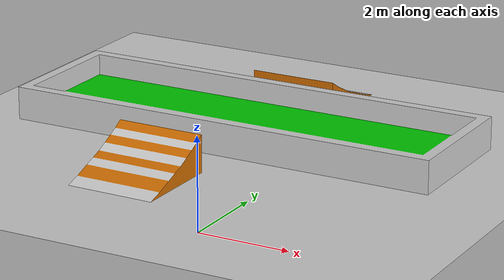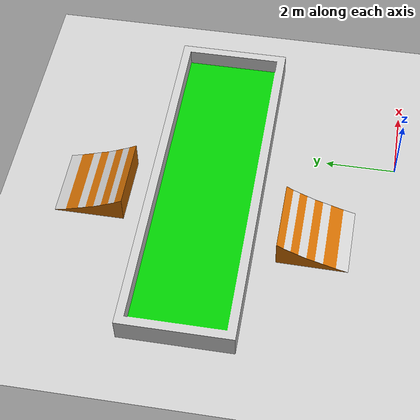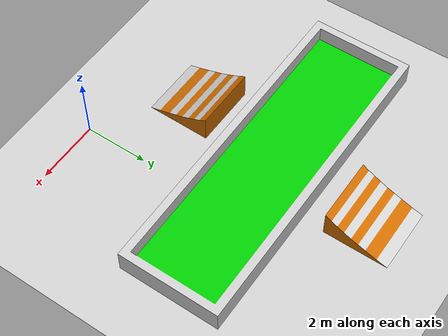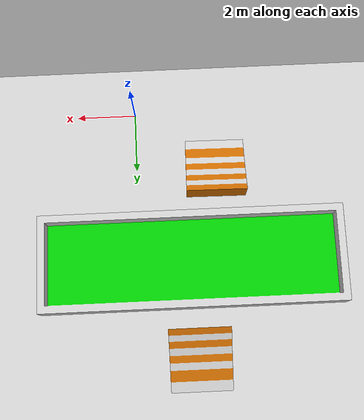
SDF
<sdf version="1.7">
 <world name="default">
  <light name="sun" type="directional">
   <pose>0 0 10 0 -0 0</pose>
   <diffuse>0.8 0.8 0.8 1</diffuse>
   <specular>0.2 0.2 0.2 1</specular>
   <attenuation>
    <range>1000</range>
    <constant>0.9</constant>
    <linear>0.01</linear>
    <quadratic>0.001</quadratic>
   </attenuation>
   <direction>-0.5 0.1 -0.9</direction>
   <spot><inner_angle>0</inner_angle><outer_angle>0</outer_angle><falloff>0</falloff></spot>
  </light>
  <model name="ground_plane">
   <static>1</static>
   <link name="link">
    <collision name="collision">
     <geometry><plane><normal>0 0 1</normal><size>100 100</size></plane></geometry>
     <surface><friction><ode><mu>100</mu><mu2>50</mu2></ode></friction></surface>
    </collision>
    <visual name="visual">
     <cast_shadows>0</cast_shadows>
     <geometry><plane><normal>0 0 1</normal><size>100 100</size></plane></geometry>
     <material>
      <script><uri>file://media/materials/scripts/gazebo.material</uri><name>Gazebo/Grey</name></script>
     </material>
    </visual>
   </link>
  </model>
  <gravity>0 0 -9.8</gravity>
  <magnetic_field>6e-06 2.3e-05 -4.2e-05</magnetic_field>
  <atmosphere type="adiabatic"/>
  <physics type="ode">
   <max_step_size>0.001</max_step_size>
   <real_time_factor>1</real_time_factor>
   <real_time_update_rate>1000</real_time_update_rate>
  </physics>
  <scene><ambient>0.4 0.4 0.4 1</ambient><background>0.7 0.7 0.7 1</background><shadows>1</shadows></scene>
  <audio><device>default</device></audio>
  <spherical_coordinates>
   <surface_model>EARTH_WGS84</surface_model>
   <latitude_deg>0</latitude_deg>
   <longitude_deg>0</longitude_deg>
   <elevation>0</elevation>
   <heading_deg>0</heading_deg>
  </spherical_coordinates>
  <model name="acidpool">
   <pose>-1.73995 5.23595 0.163177 0 -0 1.57</pose>
   <static>1</static>
   <link name="body">
    <inertial>
     <mass>1</mass>
     <inertia>
      <ixx>0.166667</ixx>
      <ixy>0</ixy>
      <ixz>0</ixz>
      <iyy>0.166667</iyy>
      <iyz>0</iyz>
      <izz>0.166667</izz>
     </inertia>
    </inertial>
    <collision name="collision">
     <geometry><mesh><uri>model://acidpool/meshes/acid_pool.dae</uri></mesh></geometry>
    </collision>
    <visual name="visual">
     <geometry><mesh><uri>model://acidpool/meshes/acid_pool.dae</uri></mesh></geometry>
    </visual>
    <cast_shadows>0</cast_shadows>
   </link>
  </model>
  <model name="ramp">
   <pose>-1.87741 8.46731 0 0 -0 1.57</pose>
   <static>1</static>
   <link name="body">
    <inertial>
     <mass>1</mass>
     <inertia>
      <ixx>0.166667</ixx>
      <ixy>0</ixy>
      <ixz>0</ixz>
      <iyy>0.166667</iyy>
      <iyz>0</iyz>
      <izz>0.166667</izz>
     </inertia>
    </inertial>
    <collision name="collision">
     <geometry><mesh><uri>model://ramp/meshes/ramp.dae</uri></mesh></geometry>
    </collision>
    <visual name="visual"><geometry><mesh><uri>model://ramp/meshes/ramp.dae</uri></mesh></geometry></visual>
    <cast_shadows>0</cast_shadows>
   </link>
  </model>
  <model name="ramp_0">
   <pose>-2.66967 2.01178 0 0 -0 -1.58234</pose>
   <static>1</static>
   <link name="body">
    <inertial>
     <mass>1</mass>
     <inertia>
      <ixx>0.166667</ixx>
      <ixy>0</ixy>
      <ixz>0</ixz>
      <iyy>0.166667</iyy>
      <iyz>0</iyz>
      <izz>0.166667</izz>
     </inertia>
    </inertial>
    <collision name="collision">
     <geometry><mesh><uri>model://ramp/meshes/ramp.dae</uri></mesh></geometry>
    </collision>
    <visual name="visual"><geometry><mesh><uri>model://ramp/meshes/ramp.dae</uri></mesh></geometry></visual>
    <cast_shadows>0</cast_shadows>
   </link>
  </model>
 </world>
</sdf>
